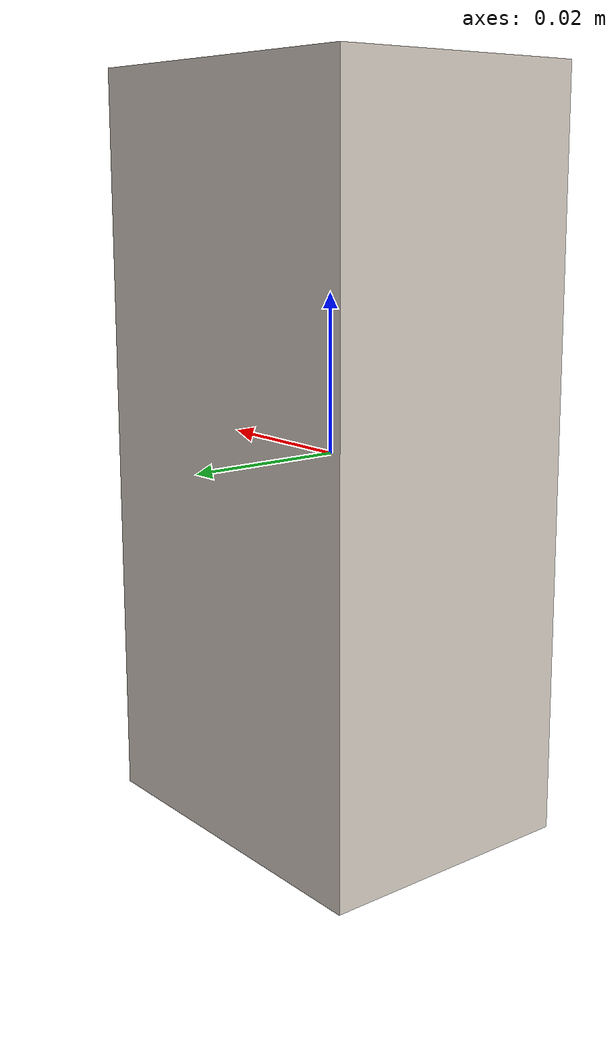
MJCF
<mujoco model="woolite">
  <asset>
    <texture file="textures/boxes/woolite.png" type="2d" name="tex-woolite" />
    <material name="woolite" reflectance="0.7" texrepeat="15 15" texture="tex-woolite" texuniform="true"/>
  </asset>
  <worldbody>
    <body>
      <body name="collision">
        <geom pos="0 0 0" size="0.0225 0.017 0.047" type="box" solimp="0.998 0.998 0.001" solref="0.001 1" density="50" friction="0.95 0.3 0.1"  material="woolite" group="1" condim="4"/>
      </body>

      <site rgba="0 0 0 0" size="0.005" pos="0 0 -0.045" name="bottom_site"/>
      <site rgba="0 0 0 0" size="0.005" pos="0 0 0.03" name="top_site"/>
      <site rgba="0 0 0 0" size="0.005" pos="0.06 0.06 0" name="horizontal_radius_site"/>
    </body>
  </worldbody>
</mujoco>
